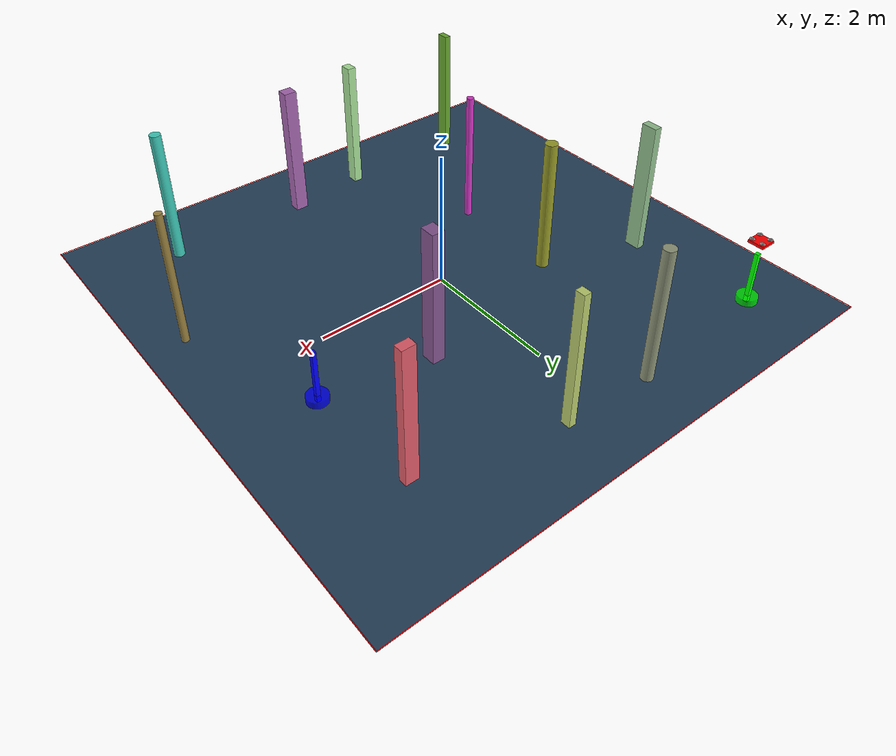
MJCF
<?xml version='1.0' encoding='utf-8'?>
<mujoco model="complex_uav_env">
  <compiler angle="degree" coordinate="local" inertiafromgeom="true" />
  <option integrator="RK4" timestep="0.01" />

  <visual>
    <headlight diffuse="0.6 0.6 0.6" ambient="0.3 0.3 0.3" />
    <rgba haze="0.15 0.25 0.35 1" />
    <global offwidth="2560" offheight="1440" />
  </visual>

  <asset>
    <texture type="skybox" builtin="gradient" rgb1="0.3 0.5 0.7" rgb2="0 0 0" width="512" height="3072" />
    <texture name="grid" type="2d" builtin="checker" rgb1="0.1 0.2 0.3" rgb2="0.2 0.3 0.4" width="512" height="512" />
    <material name="grid" texture="grid" texrepeat="1 1" />
  </asset>

  <worldbody>

    <geom name="ground" type="plane" size="4.0 4.0 0.1" material="grid" />
    <light name="light1" pos="0 0 4" dir="0 0 -1" diffuse="1 1 1" />

    <geom name="start_marker" type="cylinder" size="0.15 0.05" pos="-3.0 3.0 0.05" rgba="0 1 0 0.8" />
    <geom name="start_pole" type="box" size="0.03 0.03 0.4" pos="-3.0 3.0 0.4" rgba="0 1 0 1" />

    <geom name="goal_marker" type="cylinder" size="0.15 0.05" pos="2.6606746693206578 0.9089793258238972 0.05" rgba="0 0 1 0.8" />
    <geom name="goal_pole" type="box" size="0.03 0.03 0.4" pos="2.6606746693206578 0.9089793258238972 0.4" rgba="0 0 1 1" />

    <body name="chassis" pos="-3.0 3.0 1.0">
      <joint type="free" name="root" />
      <geom type="box" size="0.12 0.12 0.02" rgba="1.0 0.0 0.0 1.0" mass="0.8" />

      <geom type="box" size="0.08 0.01 0.005" pos="0 0 0.01" rgba="0.3 0.3 0.3 1" />
      <geom type="box" size="0.01 0.08 0.005" pos="0 0 0.01" rgba="0.3 0.3 0.3 1" />

      <geom type="cylinder" size="0.015 0.02" pos="0.08 0.08 0.015" rgba="0.2 0.2 0.2 1" />
      <geom type="cylinder" size="0.015 0.02" pos="-0.08 0.08 0.015" rgba="0.2 0.2 0.2 1" />
      <geom type="cylinder" size="0.015 0.02" pos="0.08 -0.08 0.015" rgba="0.2 0.2 0.2 1" />
      <geom type="cylinder" size="0.015 0.02" pos="-0.08 -0.08 0.015" rgba="0.2 0.2 0.2 1" />

      <geom type="cylinder" size="0.04 0.002" pos="0.08 0.08 0.035" rgba="0.7 0.7 0.7 0.8" />
      <geom type="cylinder" size="0.04 0.002" pos="-0.08 0.08 0.035" rgba="0.7 0.7 0.7 0.8" />
      <geom type="cylinder" size="0.04 0.002" pos="0.08 -0.08 0.035" rgba="0.7 0.7 0.7 0.8" />
      <geom type="cylinder" size="0.04 0.002" pos="-0.08 -0.08 0.035" rgba="0.7 0.7 0.7 0.8" />

      <site name="motor1" pos="0.08 0.08 0" size="0.01" />
      <site name="motor2" pos="-0.08 0.08 0" size="0.01" />
      <site name="motor3" pos="0.08 -0.08 0" size="0.01" />
      <site name="motor4" pos="-0.08 -0.08 0" size="0.01" />
    </body>
    <geom name="test_obs_0" type="cylinder" size="0.05459796566560771 1.0" pos="-1.400894026207765 -1.0732151659739357 1.0" rgba="0.8315188680800109 0.21497957125765607 0.7746506639491019 1.0" />
    <geom name="test_obs_1" type="cylinder" size="0.05304770952261206 1.0" pos="3.413095214947708 -1.1135007237794443 1.0" rgba="0.5999416445008684 0.5048208275690289 0.24513774501998586 1.0" />
    <geom name="test_obs_2" type="box" size="0.059885701073567846 0.11794159860040715 1.0" pos="-2.8074113142121275 1.12608451146546 1.0" rgba="0.5636519757043196 0.7427196397959613 0.5505329458953202 1.0" />
    <geom name="test_obs_3" type="cylinder" size="0.08064540889180558 1.0" pos="2.6212452242797926 -2.9185692879056333 1.0" rgba="0.24478672399163567 0.7958478680882026 0.7296792999539953 1.0" />
    <geom name="test_obs_4" type="box" size="0.05320357203158648 0.0685405189965503 1.0" pos="0.554456112349356 3.0807099712415953 1.0" rgba="0.7185606431711773 0.7867067186348355 0.42360362249595596 1.0" />
    <geom name="test_obs_5" type="box" size="0.09676325445473768 0.08498132151725338 1.0" pos="0.5503719687662039 -2.911770470857408 1.0" rgba="0.6474008478194497 0.3988943968356057 0.68567718602779 1.0" />
    <geom name="test_obs_6" type="box" size="0.09100087680200797 0.11030201995825092 1.0" pos="1.082409575723349 1.1844515674144689 1.0" rgba="0.5111178226417974 0.3304237850115208 0.557996420487203 1.0" />
    <geom name="test_obs_7" type="box" size="0.06553476746051164 0.08784378294577351 1.0" pos="-0.619247494651174 -3.0477737402183127 1.0" rgba="0.6554173566338615 0.8798659520738813 0.5927409016086238 1.0" />
    <geom name="test_obs_8" type="box" size="0.09439232098407936 0.06195056791657603 1.0" pos="2.5245508968930146 2.5671567069490653 1.0" rgba="0.8693260751035922 0.35902275753735535 0.4059958818267102 1.0" />
    <geom name="test_obs_9" type="cylinder" size="0.08572595408495183 1.0" pos="-0.7609343945033862 3.149174547681541 1.0" rgba="0.5494986989529476 0.578549548720932 0.4665394041798938 1.0" />
    <geom name="test_obs_10" type="cylinder" size="0.09103049945683861 1.0" pos="-1.3879654540461535 0.6168982764780568 1.0" rgba="0.5926349671518757 0.6085803659468939 0.15410528310417382 1.0" />
    <geom name="test_obs_11" type="box" size="0.05039498497413917 0.09657668134070352 1.0" pos="-2.5268402175008045 -3.059338369074542 1.0" rgba="0.40193586249696245 0.6543111729467552 0.18165720243994068 1.0" />
  <geom name="boundary_north" type="box" size="4.0 0.005 0.002" pos="0 4.0 0.002" rgba="1.0 0.0 0.0 1.0" /><geom name="boundary_south" type="box" size="4.0 0.005 0.002" pos="0 -4.0 0.002" rgba="1.0 0.0 0.0 1.0" /><geom name="boundary_east" type="box" size="0.005 4.0 0.002" pos="4.0 0 0.002" rgba="1.0 0.0 0.0 1.0" /><geom name="boundary_west" type="box" size="0.005 4.0 0.002" pos="-4.0 0 0.002" rgba="1.0 0.0 0.0 1.0" /></worldbody>

  <actuator>
    <motor name="m1" gear="0 0 1 0 0 0" site="motor1" />
    <motor name="m2" gear="0 0 1 0 0 0" site="motor2" />
    <motor name="m3" gear="0 0 1 0 0 0" site="motor3" />
    <motor name="m4" gear="0 0 1 0 0 0" site="motor4" />
  </actuator>
</mujoco>
